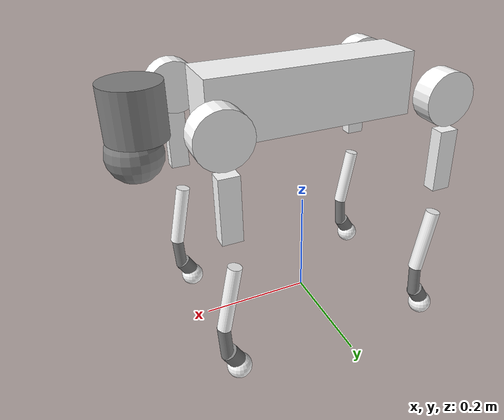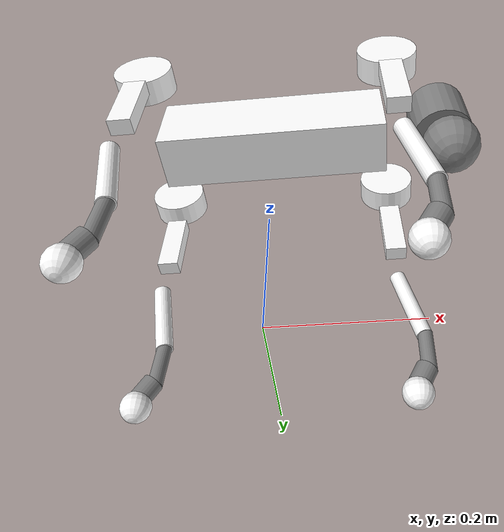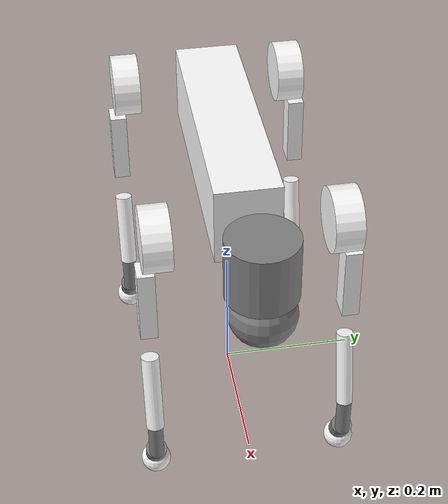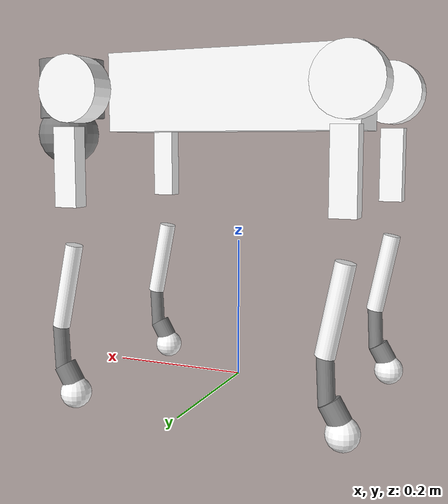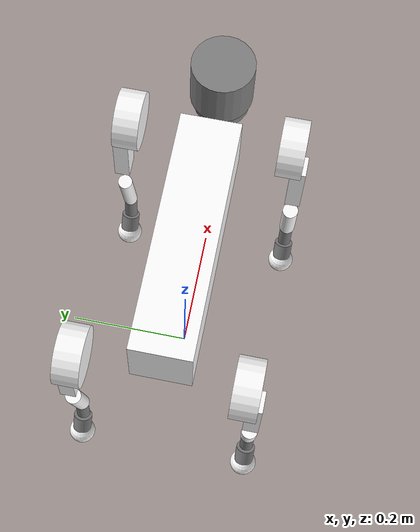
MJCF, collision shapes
<mujoco model="go2_description">
    <compiler angle="radian" meshdir="/home/ak1ra/Quadruped/go2_sim2sim/go2_description/meshes/" />
    <size njmax="500" nconmax="100" />
    <asset>
        <mesh name="base" file="base.stl" />
        <mesh name="hip" file="hip.stl" />
        <mesh name="thigh" file="thigh.stl" />
        <mesh name="calf" file="calf.stl" />
        <mesh name="foot" file="foot.stl" />
        <mesh name="thigh_mirror" file="thigh_mirror.stl" />
        <mesh name="calf_mirror" file="calf_mirror.stl" />
    </asset>
    <worldbody>
    <body name="robot" pos="0 0 0.415" quat="1 0 0 0">
        <joint name="float_base" type="free"/>
        <inertial pos="0 0 0" quat="1 0 0 0" mass="4.713" diaginertia="0.0168 0.0566 0.0647"/>
        <site name="imu" pos="-0.02557 0 0.04232" />
        <geom type="mesh" contype="0" conaffinity="0" group="1" rgba="1 1 1 1" mesh="base" />
        <geom size="0.1881 0.04675 0.057" type="box" rgba="1 1 1 1" />
        <geom size="0.05 0.045" pos="0.285 0 0.01" type="cylinder" />
        <geom size="0.047" pos="0.293 0 -0.06" />
        <body name="FL_hip" pos="0.1934 0.0465 0">
            <inertial pos="-0.0054 0.00194 -0.000105" quat="0.497014 0.499245 0.505462 0.498237" mass="0.678" diaginertia="0.00088403 0.000596003 0.000479967" />
            <joint name="FL_hip_joint" pos="0 0 0" axis="1 0 0" limited="true" damping="0.1" armature="0.01" frictionloss="0.2" range="-1.0472 1.0472" />
            <geom type="mesh" contype="0" conaffinity="0" group="1" rgba="1 1 1 1" mesh="hip" />
            <geom size="0.046 0.02" pos="0 0.08 0" quat="0.707107 0.707107 0 0" type="cylinder" rgba="1 1 1 1" />
            <body name="FL_thigh" pos="0 0.0955 0">
                <inertial pos="-0.00374 -0.0223 -0.0327" quat="0.829533 0.0847635 -0.0200632 0.551623" mass="1.152" diaginertia="0.00594973 0.00584149 0.000878787" />
                <joint name="FL_thigh_joint" pos="0 0 0" axis="0 1 0" limited="true" damping="0.1" armature="0.01" frictionloss="0.2" range="-1.5708 3.4907" />
                <geom type="mesh" contype="0" conaffinity="0" group="1" rgba="1 1 1 1" mesh="thigh" />
                <geom size="0.055 0.01225 0.017" pos="0 0 -0.1065" quat="0.707107 0 0.707107 0" type="box" rgba="1 1 1 1" />
                <body name="FL_calf" pos="0 0 -0.213">
                    <inertial pos="0.00629595 -0.000622121 -0.141417" quat="0.710672 0.00154099 -0.00450087 0.703508" mass="0.241352" diaginertia="0.0014901 0.00146356 5.31397e-05" />
                    <joint name="FL_calf_joint" pos="0 0 0" axis="0 1 0" limited="true" damping="0.1" armature="0.01" frictionloss="0.2" range="-2.7227 -0.83776" />
                    <geom type="mesh" contype="0" conaffinity="0" group="1" rgba="1 1 1 1" mesh="calf" />
                    <geom size="0.012 0.06" pos="0.008 0 -0.06" quat="0.994493 0 -0.104807 0" type="cylinder" rgba="1 1 1 1" />
                    <geom size="0.011 0.0325" pos="0.02 0 -0.148" quat="0.999688 0 0.0249974 0" type="cylinder" />
                    <geom size="0.0155 0.015" pos="0.00801333 0 -0.18745" quat="0.965093 0 0.261909 0" type="cylinder" />
                    <geom pos="0 0 -0.213" type="mesh" contype="0" conaffinity="0" group="1" rgba="1 1 1 1" mesh="foot" />
                    <geom size="0.022" pos="-0.002 0 -0.213" rgba="1 1 1 1" />
                </body>
            </body>
        </body>
        <body name="FR_hip" pos="0.1934 -0.0465 0">
            <inertial pos="-0.0054 -0.00194 -0.000105" quat="0.498237 0.505462 0.499245 0.497014" mass="0.678" diaginertia="0.00088403 0.000596003 0.000479967" />
            <joint name="FR_hip_joint" pos="0 0 0" axis="1 0 0" limited="true" damping="0.1" armature="0.01" frictionloss="0.2" range="-1.0472 1.0472" />
            <geom quat="4.63268e-05 1 0 0" type="mesh" contype="0" conaffinity="0" group="1" rgba="1 1 1 1" mesh="hip" />
            <geom size="0.046 0.02" pos="0 -0.08 0" quat="0.707107 0.707107 0 0" type="cylinder" rgba="1 1 1 1" />
            <body name="FR_thigh" pos="0 -0.0955 0">
                <inertial pos="-0.00374 0.0223 -0.0327" quat="0.551623 -0.0200632 0.0847635 0.829533" mass="1.152" diaginertia="0.00594973 0.00584149 0.000878787" />
                <joint name="FR_thigh_joint" pos="0 0 0" axis="0 1 0" limited="true" damping="0.1" armature="0.01" frictionloss="0.2" range="-1.5708 3.4907" />
                <geom type="mesh" contype="0" conaffinity="0" group="1" rgba="1 1 1 1" mesh="thigh_mirror" />
                <geom size="0.055 0.01225 0.017" pos="0 0 -0.1065" quat="0.707107 0 0.707107 0" type="box" rgba="1 1 1 1" />
                <body name="FR_calf" pos="0 0 -0.213">
                    <inertial pos="0.00629595 0.000622121 -0.141417" quat="0.703508 -0.00450087 0.00154099 0.710672" mass="0.241352" diaginertia="0.0014901 0.00146356 5.31397e-05" />
                    <joint name="FR_calf_joint" pos="0 0 0" axis="0 1 0" limited="true" damping="0.1" armature="0.01" frictionloss="0.2" range="-2.7227 -0.83776" />
                    <geom type="mesh" contype="0" conaffinity="0" group="1" rgba="1 1 1 1" mesh="calf_mirror" />
                    <geom size="0.013 0.06" pos="0.01 0 -0.06" quat="0.995004 0 -0.0998334 0" type="cylinder" rgba="1 1 1 1" />
                    <geom size="0.011 0.0325" pos="0.02 0 -0.148" quat="0.999688 0 0.0249974 0" type="cylinder" />
                    <geom size="0.0155 0.015" pos="0.00801333 0 -0.18745" quat="0.965093 0 0.261909 0" type="cylinder" />
                    <geom pos="0 0 -0.213" type="mesh" contype="0" conaffinity="0" group="1" rgba="1 1 1 1" mesh="foot" />
                    <geom size="0.022" pos="-0.002 0 -0.213" rgba="1 1 1 1" />
                </body>
            </body>
        </body>
        <body name="RL_hip" pos="-0.1934 0.0465 0">
            <inertial pos="0.0054 0.00194 -0.000105" quat="0.505462 0.498237 0.497014 0.499245" mass="0.678" diaginertia="0.00088403 0.000596003 0.000479967" />
            <joint name="RL_hip_joint" pos="0 0 0" axis="1 0 0" limited="true" damping="0.1" armature="0.01" frictionloss="0.2" range="-1.0472 1.0472" />
            <geom quat="4.63268e-05 0 1 0" type="mesh" contype="0" conaffinity="0" group="1" rgba="1 1 1 1" mesh="hip" />
            <geom size="0.046 0.02" pos="0 0.08 0" quat="0.707107 0.707107 0 0" type="cylinder" rgba="1 1 1 1" />
            <body name="RL_thigh" pos="0 0.0955 0">
                <inertial pos="-0.00374 -0.0223 -0.0327" quat="0.829533 0.0847635 -0.0200632 0.551623" mass="1.152" diaginertia="0.00594973 0.00584149 0.000878787" />
                <joint name="RL_thigh_joint" pos="0 0 0" axis="0 1 0" limited="true" damping="0.1" armature="0.01" frictionloss="0.2" range="-0.5236 4.5379" />
                <geom type="mesh" contype="0" conaffinity="0" group="1" rgba="1 1 1 1" mesh="thigh" />
                <geom size="0.055 0.01225 0.017" pos="0 0 -0.1065" quat="0.707107 0 0.707107 0" type="box" rgba="1 1 1 1" />
                <body name="RL_calf" pos="0 0 -0.213">
                    <inertial pos="0.00629595 -0.000622121 -0.141417" quat="0.710672 0.00154099 -0.00450087 0.703508" mass="0.241352" diaginertia="0.0014901 0.00146356 5.31397e-05" />
                    <joint name="RL_calf_joint" pos="0 0 0" axis="0 1 0" limited="true" damping="0.1" armature="0.01" frictionloss="0.2" range="-2.7227 -0.83776" />
                    <geom type="mesh" contype="0" conaffinity="0" group="1" rgba="1 1 1 1" mesh="calf" />
                    <geom size="0.013 0.06" pos="0.01 0 -0.06" quat="0.995004 0 -0.0998334 0" type="cylinder" rgba="1 1 1 1" />
                    <geom size="0.011 0.0325" pos="0.02 0 -0.148" quat="0.999688 0 0.0249974 0" type="cylinder" />
                    <geom size="0.0155 0.015" pos="0.00801333 0 -0.18745" quat="0.965093 0 0.261909 0" type="cylinder" />
                    <geom pos="0 0 -0.213" type="mesh" contype="0" conaffinity="0" group="1" rgba="1 1 1 1" mesh="foot" />
                    <geom size="0.022" pos="-0.002 0 -0.213" rgba="1 1 1 1" />
                </body>
            </body>
        </body>
        <body name="RR_hip" pos="-0.1934 -0.0465 0">
            <inertial pos="0.0054 -0.00194 -0.000105" quat="0.499245 0.497014 0.498237 0.505462" mass="0.678" diaginertia="0.00088403 0.000596003 0.000479967" />
            <joint name="RR_hip_joint" pos="0 0 0" axis="1 0 0" limited="true" damping="0.1" armature="0.01" frictionloss="0.2" range="-1.0472 1.0472" />
            <geom quat="2.14617e-09 4.63268e-05 4.63268e-05 -1" type="mesh" contype="0" conaffinity="0" group="1" rgba="1 1 1 1" mesh="hip" />
            <geom size="0.046 0.02" pos="0 -0.08 0" quat="0.707107 0.707107 0 0" type="cylinder" rgba="1 1 1 1" />
            <body name="RR_thigh" pos="0 -0.0955 0">
                <inertial pos="-0.00374 0.0223 -0.0327" quat="0.551623 -0.0200632 0.0847635 0.829533" mass="1.152" diaginertia="0.00594973 0.00584149 0.000878787" />
                <joint name="RR_thigh_joint" pos="0 0 0" axis="0 1 0" limited="true" damping="0.1" armature="0.01" frictionloss="0.2" range="-0.5236 4.5379" />
                <geom type="mesh" contype="0" conaffinity="0" group="1" rgba="1 1 1 1" mesh="thigh_mirror" />
                <geom size="0.055 0.01225 0.017" pos="0 0 -0.1065" quat="0.707107 0 0.707107 0" type="box" rgba="1 1 1 1" />
                <body name="RR_calf" pos="0 0 -0.213">
                    <inertial pos="0.00629595 0.000622121 -0.141417" quat="0.703508 -0.00450087 0.00154099 0.710672" mass="0.241352" diaginertia="0.0014901 0.00146356 5.31397e-05" />
                    <joint name="RR_calf_joint" pos="0 0 0" axis="0 1 0" limited="true" damping="0.1" armature="0.01" frictionloss="0.2" range="-2.7227 -0.83776" />
                    <geom type="mesh" contype="0" conaffinity="0" group="1" rgba="1 1 1 1" mesh="calf_mirror" />
                    <geom size="0.013 0.06" pos="0.01 0 -0.06" quat="0.995004 0 -0.0998334 0" type="cylinder" rgba="1 1 1 1" />
                    <geom size="0.011 0.0325" pos="0.02 0 -0.148" quat="0.999688 0 0.0249974 0" type="cylinder" />
                    <geom size="0.0155 0.015" pos="0.00801333 0 -0.18745" quat="0.965093 0 0.261909 0" type="cylinder" />
                    <geom pos="0 0 -0.213" type="mesh" contype="0" conaffinity="0" group="1" rgba="1 1 1 1" mesh="foot" />
                    <geom size="0.022" pos="-0.002 0 -0.213" rgba="1 1 1 1" />
                </body>
            </body>
        </body>
    </body>
    </worldbody>

    <actuator>
        <motor name="FL_hip_joint" joint="FL_hip_joint" gear="1" ctrllimited="true" ctrlrange="-12 12" />
        <motor name="FL_thigh_joint" joint="FL_thigh_joint" gear="1" ctrllimited="true" ctrlrange="-12 12" />
        <motor name="FL_calf_joint" joint="FL_calf_joint" gear="1" ctrllimited="true" ctrlrange="-12 12"/>

        <motor name="FR_hip_joint" joint="FR_hip_joint" gear="1" ctrllimited="true" ctrlrange="-12 12" />
        <motor name="FR_thigh_joint" joint="FR_thigh_joint" gear="1" ctrllimited="true" ctrlrange="-12 12" />
        <motor name="FR_calf_joint" joint="FR_calf_joint" gear="1" ctrllimited="true" ctrlrange="-12 12"/>

        <motor name="RL_hip_joint" joint="RL_hip_joint" gear="1" ctrllimited="true" ctrlrange="-12 12" />
        <motor name="RL_thigh_joint" joint="RL_thigh_joint" gear="1" ctrllimited="true" ctrlrange="-12 12" />
        <motor name="RL_calf_joint" joint="RL_calf_joint" gear="1" ctrllimited="true" ctrlrange="-12 12"/>

        <motor name="RR_hip_joint" joint="RR_hip_joint" gear="1" ctrllimited="true" ctrlrange="-12 12" />
        <motor name="RR_thigh_joint" joint="RR_thigh_joint" gear="1" ctrllimited="true" ctrlrange="-12 12" />
        <motor name="RR_calf_joint" joint="RR_calf_joint" gear="1" ctrllimited="true" ctrlrange="-12 12"/>
    </actuator>

    <sensor>
        <actuatorpos name='FR_hip_joint_p' actuator='FR_hip_joint' user='13' />
        <actuatorpos name='FR_thigh_joint_p'  actuator='FR_thigh_joint' user='13'/>
        <actuatorpos name='FR_calf_joint_p'  actuator='FR_calf_joint' user='13'/>
        <actuatorpos name='FL_hip_joint_p' actuator='FL_hip_joint' user='13' />
        <actuatorpos name='FL_thigh_joint_p'  actuator='FL_thigh_joint' user='13'/>
        <actuatorpos name='FL_calf_joint_p'  actuator='FL_calf_joint' user='13'/>
        <actuatorpos name='RR_hip_joint_p' actuator='RR_hip_joint' user='13' />
        <actuatorpos name='RR_thigh_joint_p'  actuator='RR_thigh_joint' user='13'/>
        <actuatorpos name='RR_calf_joint_p'  actuator='RR_calf_joint' user='13'/>
        <actuatorpos name='RL_hip_joint_p' actuator='RL_hip_joint' user='13' />
        <actuatorpos name='RL_thigh_joint_p'  actuator='RL_thigh_joint' user='13'/>
        <actuatorpos name='RL_calf_joint_p'  actuator='RL_calf_joint' user='13'/>

        <actuatorvel name='FR_hip_joint_v'  actuator='FR_hip_joint' user='13'/>
        <actuatorvel name='FR_thigh_joint_v'  actuator='FR_thigh_joint' user='13'/>
        <actuatorvel name='FR_calf_joint_v'  actuator='FR_calf_joint' user='13'/>
        <actuatorvel name='FL_hip_joint_v'  actuator='FL_hip_joint' user='13'/>
        <actuatorvel name='FL_thigh_joint_v'  actuator='FL_thigh_joint' user='13'/>
        <actuatorvel name='FL_calf_joint_v'  actuator='FL_calf_joint' user='13'/>
        <actuatorvel name='RR_hip_joint_v'  actuator='RR_hip_joint' user='13'/>
        <actuatorvel name='RR_thigh_joint_v'  actuator='RR_thigh_joint' user='13'/>
        <actuatorvel name='RR_calf_joint_v'  actuator='RR_calf_joint' user='13'/>
        <actuatorvel name='RL_hip_joint_v'  actuator='RL_hip_joint' user='13'/>
        <actuatorvel name='RL_thigh_joint_v'  actuator='RL_thigh_joint' user='13'/>
        <actuatorvel name='RL_calf_joint_v'  actuator='RL_calf_joint' user='13'/>

        <actuatorfrc name='FR_hip_joint_f'  actuator='FR_hip_joint'  user='13' noise='1e-3'/>
        <actuatorfrc name='FR_thigh_joint_f'  actuator='FR_thigh_joint'  user='13' noise='1e-3'/>
        <actuatorfrc name='FR_calf_joint_f'  actuator='FR_calf_joint'  user='13' noise='1e-3'/>
        <actuatorfrc name='FL_hip_joint_f'  actuator='FL_hip_joint'  user='13' noise='1e-3'/>
        <actuatorfrc name='FL_thigh_joint_f'  actuator='FL_thigh_joint'  user='13' noise='1e-3'/>
        <actuatorfrc name='FL_calf_joint_f'  actuator='FL_calf_joint'  user='13' noise='1e-3'/>
        <actuatorfrc name='RR_hip_joint_f'  actuator='RR_hip_joint'  user='13' noise='1e-3'/>
        <actuatorfrc name='RR_thigh_joint_f'  actuator='RR_thigh_joint'  user='13' noise='1e-3'/>
        <actuatorfrc name='RR_calf_joint_f'  actuator='RR_calf_joint'  user='13' noise='1e-3'/>
        <actuatorfrc name='RL_hip_joint_f'  actuator='RL_hip_joint'  user='13' noise='1e-3'/>
        <actuatorfrc name='RL_thigh_joint_f'  actuator='RL_thigh_joint'  user='13' noise='1e-3'/>
        <actuatorfrc name='RL_calf_joint_f'  actuator='RL_calf_joint'  user='13' noise='1e-3'/>

        <framequat     name='orientation' objtype='site' noise='0.001' objname='imu'/>
        <framepos      name='position' objtype='site' noise='0.001' objname='imu'/>
        <gyro          name='angular-velocity'    site='imu' noise='0.005' cutoff='34.9'/>
        <velocimeter   name='linear-velocity'     site='imu' noise='0.001' cutoff='30'/>
        <accelerometer name='linear-acceleration' site='imu' noise='0.005' cutoff='157'/>
        <magnetometer  name='magnetometer'        site='imu'/>
    </sensor>
</mujoco>
